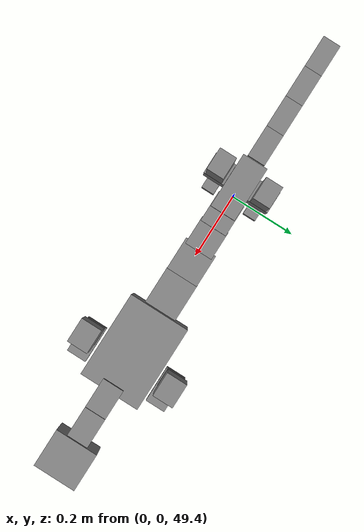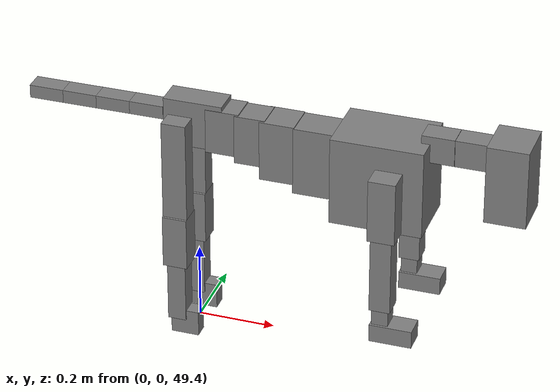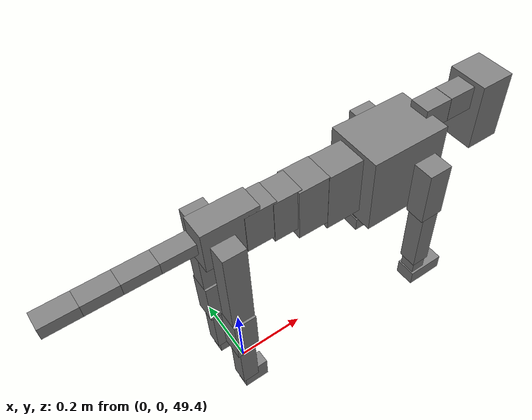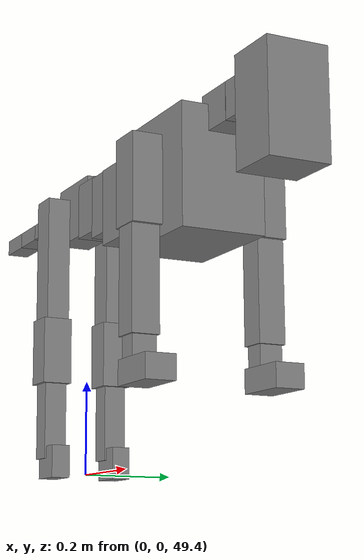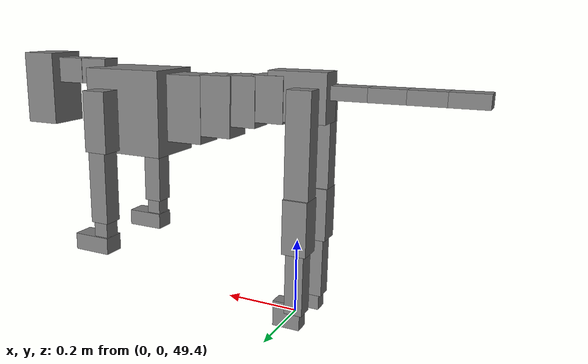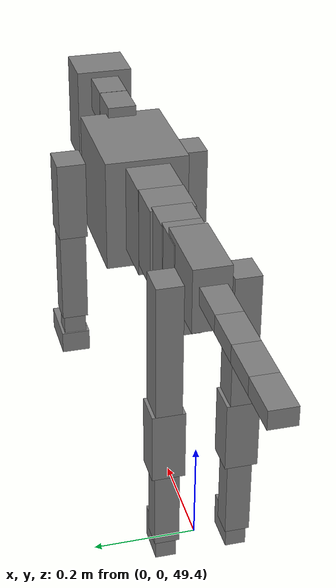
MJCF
<mujoco model="dog">

    <default>
        <joint armature="0.02" stiffness="1" damping="0.2" limited="true"/>
        <geom condim="3" friction="1 0.05 0.05" margin="0.01"/>
        <motor ctrllimited="true" ctrlrange="-1.0 1.0" forcelimited="true" gear="50"/>
    </default>

    <compiler inertiafromgeom="true" angle="radian"/>

    <option timestep="0.016" iterations="50" tolerance="1e-10" solver="Newton" jacobian="dense" cone="pyramidal"/>

    <size nconmax="20000" njmax="60000" nstack="5000000"/>
    <visual>
        <map force="0.1" zfar="30"/>
        <rgba haze="0.15 0.25 0.35 1"/>
        <quality shadowsize="2048"/>
        <global offwidth="800" offheight="800"/>
    </visual>

    <asset>
        <texture type="skybox" builtin="gradient" rgb1="0.3 0.5 0.7" rgb2="0 0 0" width="512" height="512"/>
        <texture name="texplane" type="2d" builtin="checker" rgb1=".2 .3 .4" rgb2=".1 0.15 0.2" width="512" height="512"
                 mark="cross" markrgb=".8 .8 .8"/>
        <texture name="texgeom" type="cube" builtin="flat" mark="cross" width="127" height="1278" rgb1="0.8 0.6 0.4"
                 rgb2="0.8 0.6 0.4" markrgb="1 1 1" random="0.01"/>

        <material name="matplane" reflectance="0.3" texture="texplane" texrepeat="1 1" texuniform="true"/>
        <material name="matgeom" texture="texgeom" texuniform="true" rgba="0.8 0.6 .4 1"/>
    </asset>

    <worldbody>
        <geom name="floor" pos="0 0 0" size="0 0 .25" type="plane" material="matplane" condim="3"/>

        <light directional="false" diffuse=".2 .2 .2" specular="0 0 0" pos="0 0 5" dir="0 0 -1" castshadow="false"/>
        <light mode="targetbodycom" target="torso" directional="false" diffuse=".8 .8 .8" specular="0.3 0.3 0.3"
               pos="0 0 4.0" dir="0 0 -1"/>

        <body name="root" pos="0 0 50">
            <freejoint name="root_1"/>
            <geom type="box" pos="0 0 -0.02" size="0.0774  0.0358  0.063" density="2030"/>

            <body name="spine1" pos="0.054 0 0">
                <joint name="spine1_y" axis="0 1 0" range="0 0.7" limited="true"/>
                <geom type="box" pos="0.02375 0 -0.03" size="0.04375  0.0375  0.05985" density="2030"/>

                <body name="spine2" pos="0.0612 0 0">
                    <joint name="spine2_y" axis="0 1 0" range="-0.15 0.15" limited="true"/>
                    <geom type="box" pos="0.03555  0  -0.04" size="0.04055  0.039  0.06615" density="2030"/>

                    <body name="spine3" pos="0.0730 0 0">
                        <joint name="spine3_y" axis="0 1 0" range="-0.15 0.15" limited="true"/>
                        <geom type="box" pos="0.03555  0  -0.057" size="0.04555  0.0445  0.081" density="2030"/>

                        <body name="spine4" pos="0.0780 0 0">
                            <joint name="spine4_y" axis="0 1 0" range="-0.15 0.15" limited="true"/>
                            <geom type="box" pos="0.05265  0  -0.07" size="0.05265  0.045  0.09135" density="2030"/>

                            <body name="torso" pos="0.1082 0 0">
                                <joint name="torso_y" axis="0 1 0" range="-0.15 0.15" limited="true"/>
                                <geom type="box" pos="0.11925  0  -0.085" size="0.11925  0.085  0.11745"
                                      density="2030"/>

                                <body name="neck1" pos="0.2160  0   0.0180">
                                    <joint name="neck1_y" axis="0 1 0" range="-1.2  -1" limited="true"/>
                                    <geom type="box" pos="0.0423  0  0" size="0.0423  0.03  0.036" density="2325"/>

                                    <body name="neck2" pos="0.0853  0  0">
                                        <joint name="neck2_y" axis="0 1 0" range="0.1  0" limited="true"/>
                                        <geom type="box" pos="0.0423  0  0" size="0.0423  0.03  0.036" density="2325"/>

                                        <body name="head" pos="0.0853  0  0">
                                            <joint name="head_y" axis="0 1 0" range="-0.3  -0.2" limited="true"/>
                                            <geom type="box" pos="0.0531  0  -0.055" size="0.0531  0.06  0.1044"
                                                  density="4030"/>

                                        </body>
                                    </body>
                                </body>

                                <body name="front_shoulder" pos="0.156  0   -0.0480">
                                    <joint name="front_shoulder_y" axis="0 1 0" range="-1 1.5" limited="true"/>
                                    <geom type="box" pos="0 0.13 -0.0576" size="0.0350  0.0300  0.0842" density="1158"/>
                                    <geom type="box" pos="0 -0.13 -0.0576" size="0.0350  0.0300  0.0842"
                                          density="1158"/>

                                    <body name="front_elbow" pos="0  0  -0.1151">
                                        <joint name="front_elbow_y" axis="0 1 0" range="-2 0" limited="true"/>
                                        <geom type="box" pos="0 0.13 -0.1134" size="0.0270  0.0276  0.1134"
                                              density="1081"/>
                                        <geom type="box" pos="0 -0.13 -0.1134" size="0.0270  0.0276  0.1134"
                                              density="1081"/>

                                        <body name="front_wrist" pos="0  0  -0.2268">
                                            <joint name="front_wrist_y" axis="0 1 0" range="-0.2 0" limited="true"/>
                                            <geom type="box" pos="0 0.13 -0.0285" size="0.0212  0.0236  0.0417"
                                                  density="1664"/>
                                            <geom type="box" pos="0 -0.13 -0.0285" size="0.0212  0.0236  0.0417"
                                                  density="1664"/>

                                            <body name="front_finger_end" pos="0  0  -0.0570">
                                                <joint name="front_finger_y" axis="0 1 0" range="-0.4 1"
                                                       limited="true"/>
                                                <geom type="box" pos="0.0300  0.13  -0.0086"
                                                      size="0.0550  0.0300  0.0236" density="1515"/>
                                                <geom type="box" pos="0.0300  -0.13  -0.0086"
                                                      size="0.0550  0.0300  0.0236" density="1515"/>

                                            </body>

                                        </body>
                                    </body>
                                </body>

                            </body>
                        </body>
                    </body>
                </body>
            </body>

            <body name="back_hip" pos="-0.03 0 -0.018">
                <joint name="back_hip_y" axis="0 1 0" range="-1.5 0.3" limited="true"/>
                <geom type="box" pos="0 0.07 -0.1305" size="0.0320  0.0251  0.1533" density="1154"/>
                <geom type="box" pos="0 -0.07 -0.1305" size="0.0320  0.0251  0.1533" density="1154"/>

                <body name="back_knee" pos="0  0  -0.2610">
                    <joint name="back_knee_y" axis="0 1 0" range="0 2.8" limited="true"/>
                    <geom type="box" pos="0 0.07 -0.0552" size="0.0321  0.0316  0.0708" density="1227"/>
                    <geom type="box" pos="0 -0.07 -0.0552" size="0.0321  0.0316  0.0708" density="1227"/>

                    <body name="back_ankle" pos="0  0  -0.1105">
                        <joint name="back_ankle_y" axis="0 1 0" range="-2.2 0" limited="true"/>
                        <geom type="box" pos="0 0.07 -0.0829" size="0.0240  0.0240  0.0942" density="1284"/>
                        <geom type="box" pos="0 -0.07 -0.0829" size="0.0240  0.0240  0.0942" density="1284"/>

                        <body name="back_toe_end" pos="0  0  -0.1659">
                            <joint name="back_toe_y" axis="0 1 0" range="-0.4 1" limited="true"/>
                            <geom type="box" pos="0.0200  0.07  -0.0191" size="0.0367  0.0200  0.0341" density="1515"/>
                            <geom type="box" pos="0.0200  -0.07  -0.0191" size="0.0367  0.0200  0.0341" density="1515"/>

                        </body>
                    </body>
                </body>
            </body>

            <body name="tail1" pos="-0.074 0 -0.006">
                <joint name="tail1_y" axis="0 1 0" range="-0.2 0.2" limited="true"/>
                <geom type="box" pos="-0.0536  0  0" size="0.045  0.025  0.0175" density="1587"/>

                <body name="tail2" pos="-0.09 0 0">
                    <joint name="tail2_y" axis="0 1 0" range="-0.2 0.2" limited="true"/>
                    <geom type="box" pos="-0.0536  0  0" size="0.045  0.025  0.0175" density="1587"/>

                    <body name="tail3" pos="-0.09 0 0">
                        <joint name="tail3_y" axis="0 1 0" range="-0.2 0.2" limited="true"/>
                        <geom type="box" pos="-0.0536  0  0" size="0.045  0.025  0.0175" density="1587"/>

                        <body name="tail4" pos="-0.09 0 0">
                            <joint name="tail4_y" axis="0 1 0" range="-0.2 0.2" limited="true"/>
                            <geom type="box" pos="-0.0536  0  0" size="0.045  0.025  0.0175" density="1587"/>

                        </body>
                    </body>
                </body>
            </body>
        </body>
    </worldbody>

    <actuator>
        <motor joint="spine1_y" forcerange="-150 150     "/>
        <motor joint="spine2_y" forcerange="-150 150     "/>
        <motor joint="spine3_y" forcerange="-150 150     "/>
        <motor joint="spine4_y" forcerange="-150 150     "/>
        <motor joint="torso_y" forcerange="-150 150     "/>
        <motor joint="neck1_y" forcerange="-100 100       "/>
        <motor joint="neck2_y" forcerange="-100 100       "/>
        <motor joint="head_y" forcerange="-150 150       "/>
        <motor joint="front_shoulder_y" forcerange="-123.46 176.24"/>
        <motor joint="front_elbow_y" forcerange="-138.05 162.73"/>
        <motor joint="front_wrist_y" forcerange="-102.66 85.81"/>
        <motor joint="front_finger_y" forcerange="-92.19 27.89"/>
        <motor joint="back_hip_y" forcerange="-288.13 246.08"/>
        <motor joint="back_knee_y" forcerange="-295.04 364.90"/>
        <motor joint="back_angle_y" forcerange="-82.87 201.80"/>
        <motor joint="back_toe_y" forcerange="-33.66 46.51"/>
        <motor joint="tail1_y" forcerange="-50 50     "/>
        <motor joint="tail2_y" forcerange="-50 50     "/>
        <motor joint="tail3_y" forcerange="-50 50     "/>
        <motor joint="tail4_y" forcerange="-50 50     "/>
    </actuator>
</mujoco>
